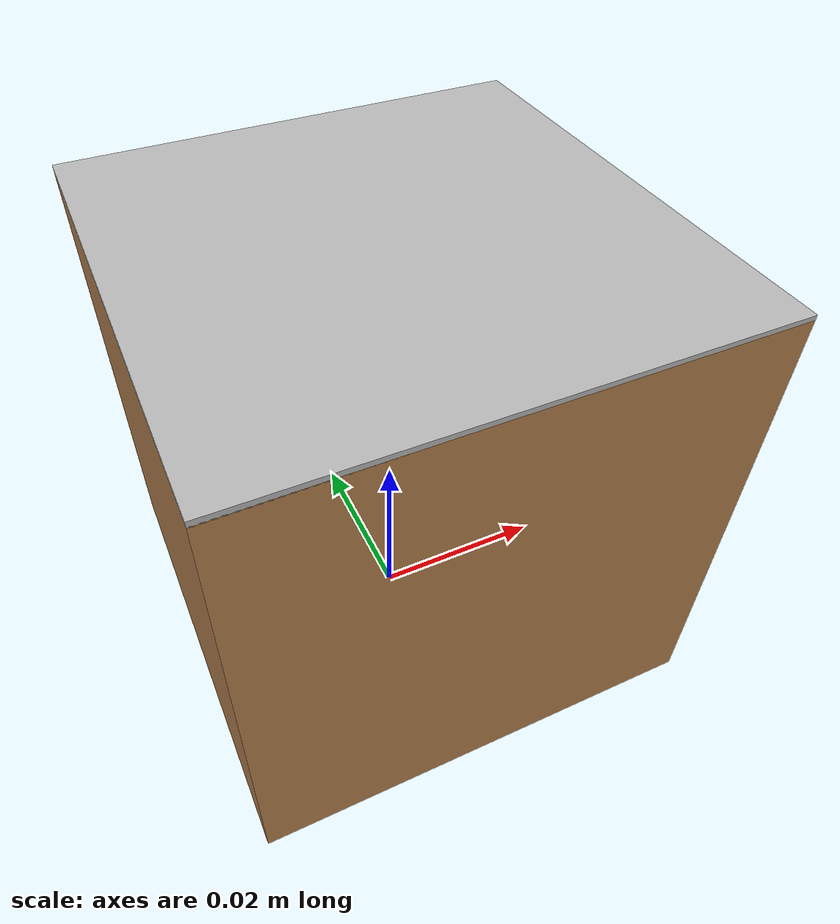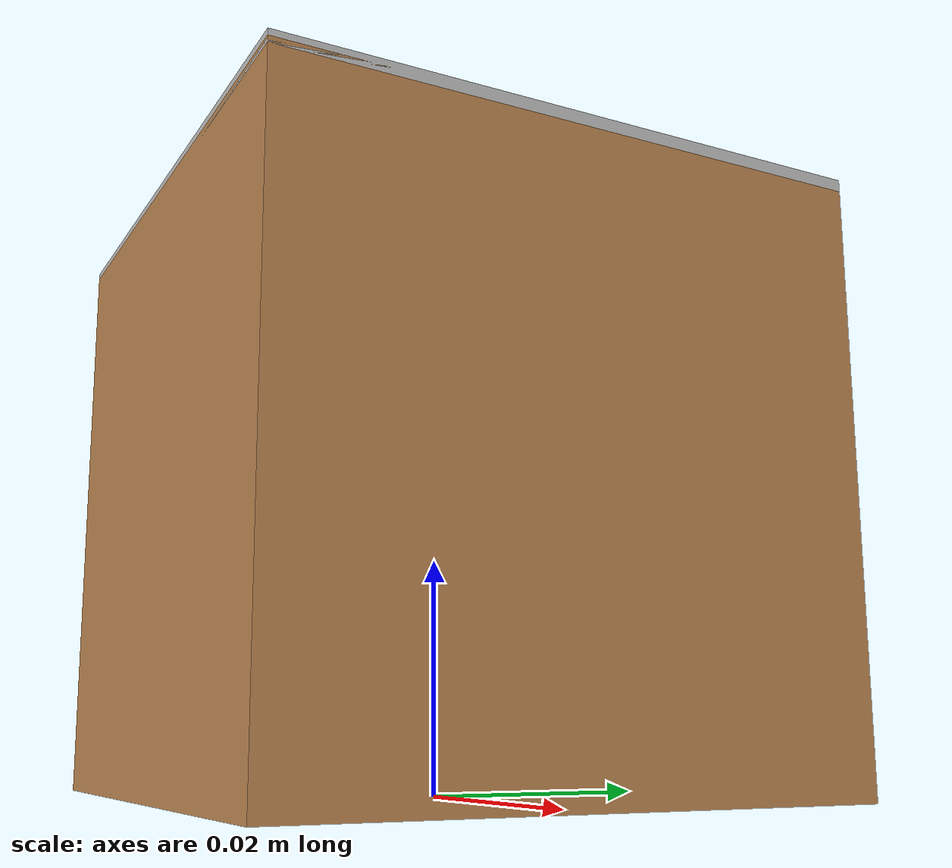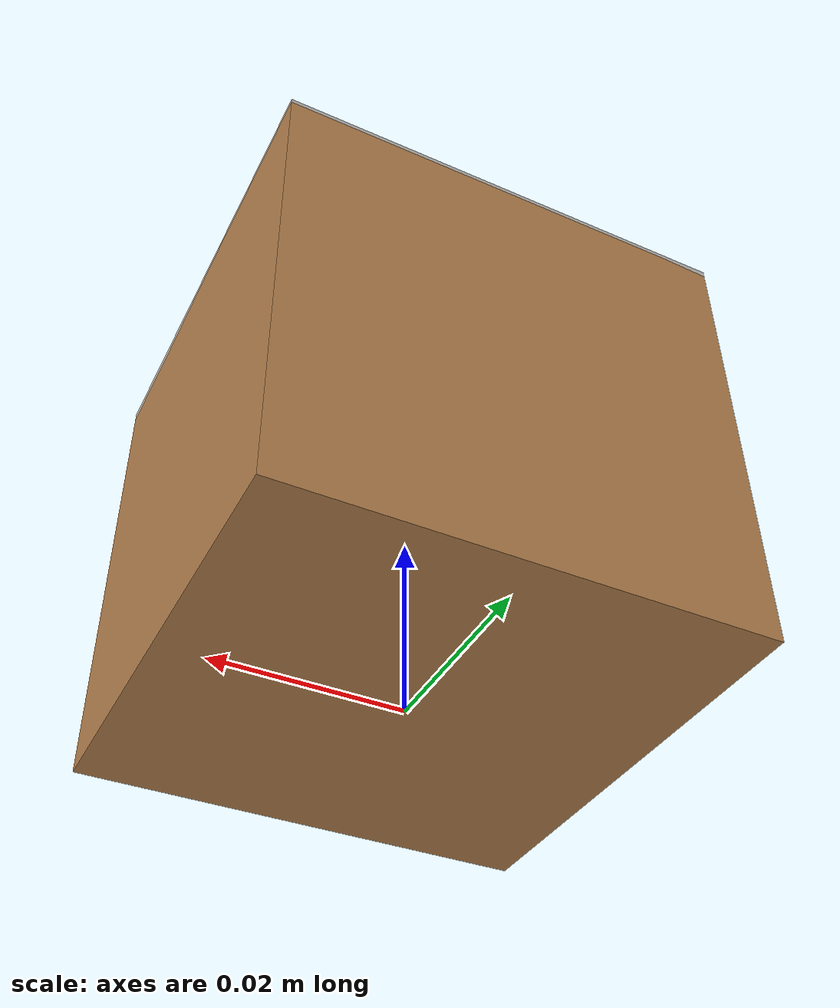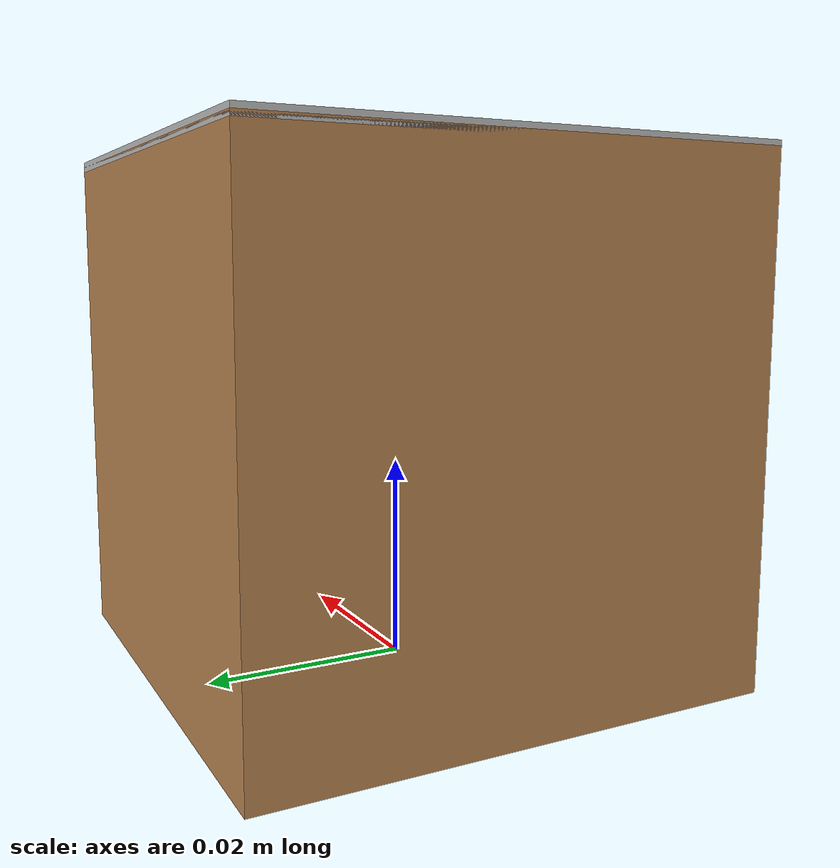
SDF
<?xml version="1.0" ?>
<sdf version="1.5">
  <model name="wood_cube_5cm">
    <link name="link">
      <pose>0 0 0.025 0 0 0</pose>
      <inertial>
        <mass>0.0565</mass>
        <inertia>
          <ixx>2.3541666666666672e-05</ixx>
          <ixy>0</ixy>
          <ixz>0</ixz>
          <iyy>2.3541666666666672e-05</iyy>
          <iyz>0</iyz>
          <izz>2.3541666666666672e-05</izz>
        </inertia>
      </inertial>

      <collision name="collision">
        <geometry>
          <box>
            <size>0.05 0.05 0.05</size>
          </box>
        </geometry>
        <surface>
          <contact>
            <!-- Red Pine coefficients for longitudinal axis of the wood
                 according to:
                 http://www.fpl.fs.fed.us/documnts/fplgtr/fplgtr113/ch04.pdf -->
            <poissons_ratio>0.347</poissons_ratio>
            <elastic_modulus>8.8e+09</elastic_modulus>
            <ode>
              <kp>100000</kp>
              <kd>1</kd>
              <max_vel>1.0</max_vel>
              <min_depth>0.001</min_depth>
            </ode>
          </contact>
          <friction>
            <torsional>
              <coefficient>1.0</coefficient>
              <use_patch_radius>0</use_patch_radius>
              <surface_radius>0.05</surface_radius>
            </torsional>
          </friction>
        </surface>
      </collision>

      <visual name="visual">
        <geometry>
          <box>
            <size>0.05 0.05 0.05</size>
          </box>
        </geometry>
        <material>
          <script>
            <uri>file://media/materials/scripts/gazebo.material</uri>
            <name>Gazebo/Wood</name>
          </script>
        </material>
      </visual>

    </link>

    <link name='Apriltag36_11_00000::main'>
      <pose relative_to='Apriltag36_11_00000::__model__'>0 0 0 0 -0 0</pose>
      <visual name='main_Visual'>
        <geometry>
          <box>
            <size>0.05 0.05 0.001</size>
          </box>
        </geometry>
        <material>
          <script>
            <uri>model://Apriltag36_11_00000/materials/scripts</uri>
            <uri>model://Apriltag36_11_00000/materials/textures</uri>
            <name>Apriltag36_11_00000</name>
          </script>
        </material>
      </visual>
      <self_collide>0</self_collide>
      <inertial>
        <pose>0 0 0 0 -0 0</pose>
        <inertia>
          <ixx>1</ixx>
          <ixy>0</ixy>
          <ixz>0</ixz>
          <iyy>1</iyy>
          <iyz>0</iyz>
          <izz>1</izz>
        </inertia>
        <mass>1</mass>
      </inertial>
      <enable_wind>0</enable_wind>
      <kinematic>0</kinematic>
    </link>

    <frame name='Apriltag36_11_00000::__model__' attached_to='Apriltag36_11_00000::main'>
      <pose relative_to='__model__'>0 0 0.05 0 -0 0</pose>
    </frame>

    <joint name='Apriltag36_11_00000_joint' type='fixed'>
      <child>Apriltag36_11_00000::main</child>
      <parent>link</parent>
    </joint>

  </model>
</sdf>
